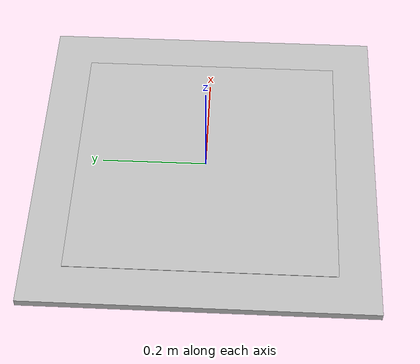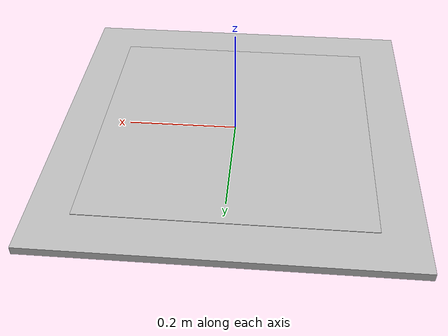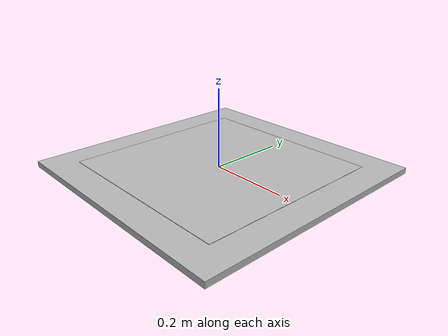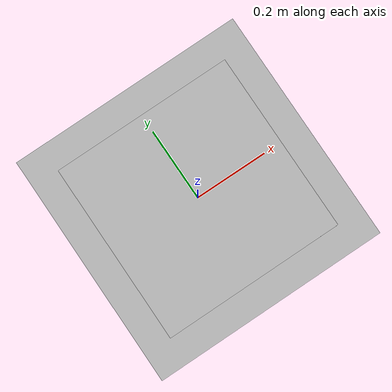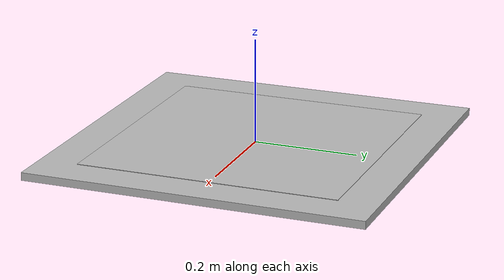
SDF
<sdf version="1.7">
 <world name="default">
  <model name="aruco_combined">
   <link name="link">
    <visual name="visual">
     <geometry><box><size>0.015 0.5 0.5</size></box></geometry>
     <material>
      <script>
       <uri>model://aruco_combined/materials/scripts</uri>
       <uri>model://aruco_combined/materials/textures</uri>
       <name>aruco_combined/Diffuse</name>
      </script>
      <shader type="pixel"/>
     </material>
    </visual>
    <visual name="aruco_frame">
     <pose>-0.001 0 0 0 -0 0</pose>
     <geometry><box><size>0.015 0.65 0.65</size></box></geometry>
     <material><shader type="pixel"/></material>
    </visual>
    <collision name="collision">
     <geometry><box><size>0.015 0.65 0.65</size></box></geometry>
     <surface>
      <friction>
       <ode><mu>1</mu><mu2>1</mu2><fdir1>0 0 0</fdir1><slip1>0</slip1><slip2>0</slip2></ode>
       <torsional>
        <coefficient>1</coefficient>
        <patch_radius>0</patch_radius>
        <surface_radius>0</surface_radius>
        <use_patch_radius>1</use_patch_radius>
        <ode><slip>0</slip></ode>
       </torsional>
      </friction>
      <bounce><restitution_coefficient>0</restitution_coefficient><threshold>1e+06</threshold></bounce>
      <contact>
       <collide_without_contact>0</collide_without_contact>
       <collide_without_contact_bitmask>1</collide_without_contact_bitmask>
       <collide_bitmask>1</collide_bitmask>
       <ode>
        <soft_cfm>0</soft_cfm>
        <soft_erp>0.2</soft_erp>
        <kp>1e+13</kp>
        <kd>1</kd>
        <max_vel>0.01</max_vel>
        <min_depth>0</min_depth>
       </ode>
       <bullet>
        <split_impulse>1</split_impulse>
        <split_impulse_penetration_threshold>-0.01</split_impulse_penetration_threshold>
        <soft_cfm>0</soft_cfm>
        <soft_erp>0.2</soft_erp>
        <kp>1e+13</kp>
        <kd>1</kd>
       </bullet>
      </contact>
     </surface>
    </collision>
   </link>
   <static>1</static>
   <pose>0.000000 0.000000 0 3.14159 -1.56665 3.14159</pose>
  </model>
 </world>
</sdf>
